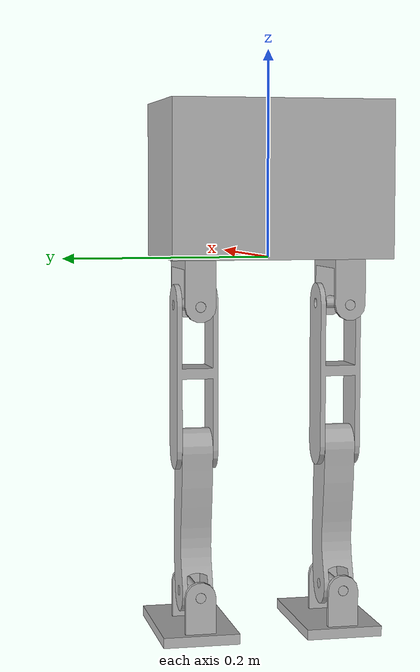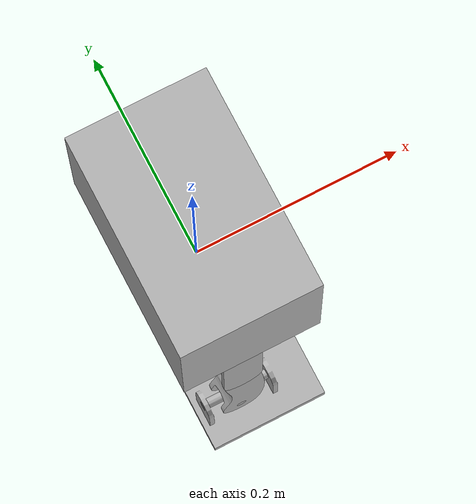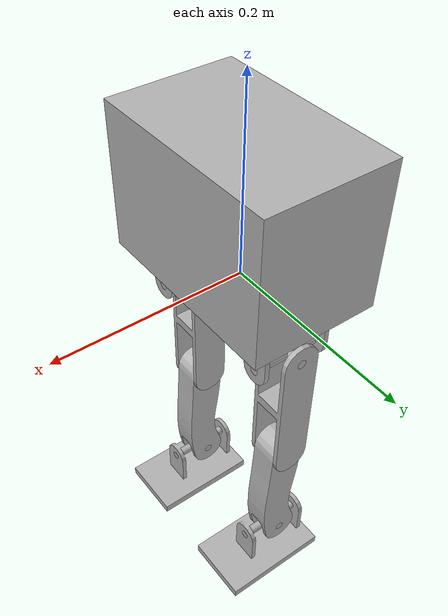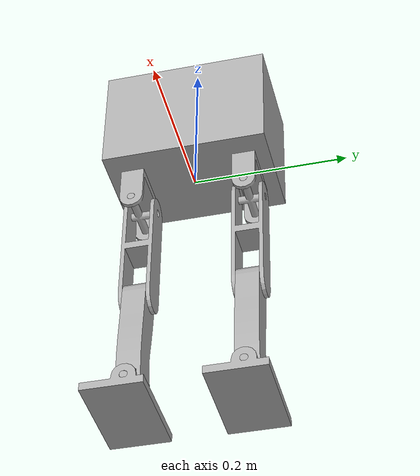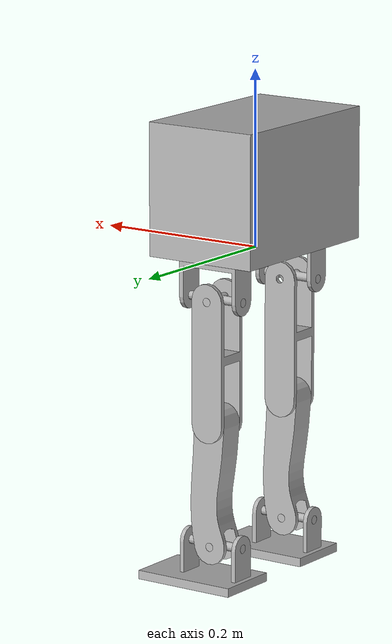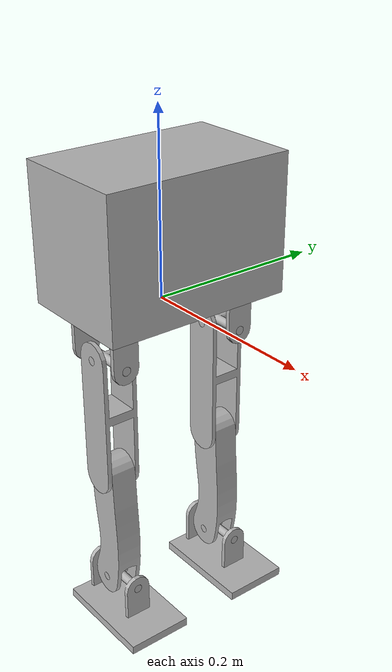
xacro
<?xml version="1.0" ?>
<robot name="LeggedRobot" xmlns:xacro="http://www.ros.org/wiki/xacro">

<xacro:include filename="$(find LeggedRobot_description)/urdf/materials.xacro" />
<xacro:include filename="$(find LeggedRobot_description)/urdf/LeggedRobot.trans" />
<xacro:include filename="$(find LeggedRobot_description)/urdf/LeggedRobot.gazebo" />
<link name="base_link">
  <inertial>
    <origin xyz="-2.7471154310606345e-17 -1.7035252624411454e-17 0.07519859671235585" rpy="0 0 0"/>
    <mass value="7.805254806134041"/>
    <inertia ixx="0.044074" iyy="0.026397" izz="0.041232" ixy="-0.0" iyz="0.0" ixz="-0.0"/>
  </inertial>
  <visual>
    <origin xyz="0 0 0" rpy="0 0 0"/>
    <geometry>
      <mesh filename="../meshes/base_link.stl"/>
    </geometry>
    <material name="silver"/>
  </visual>
  <collision>
    <origin xyz="0 0 0" rpy="0 0 0"/>
    <geometry>
      <mesh filename="../meshes/base_link.stl"/>
    </geometry>
  </collision>
</link>

<link name="Hip_v1__1__1">
  <inertial>
    <origin xyz="0.0022984441069888208 -5.53402129122027e-07 -0.013356564577291863" rpy="0 0 0"/>
    <mass value="0.07120981938348954"/>
    <inertia ixx="2.6e-05" iyy="7e-05" izz="5.4e-05" ixy="0.0" iyz="0.0" ixz="0.0"/>
  </inertial>
  <visual>
    <origin xyz="0.0 -0.073437 -0.0" rpy="0 0 0"/>
    <geometry>
      <mesh filename="../meshes/Hip_v1__1__1.stl"/>
    </geometry>
    <material name="silver"/>
  </visual>
  <collision>
    <origin xyz="0.0 -0.073437 -0.0" rpy="0 0 0"/>
    <geometry>
      <mesh filename="../meshes/Hip_v1__1__1.stl"/>
    </geometry>
  </collision>
</link>

<link name="Hip_v1_1">
  <inertial>
    <origin xyz="0.0022984441069888546 -1.1401027765201022e-06 -0.013356564577292111" rpy="0 0 0"/>
    <mass value="0.07120981938348954"/>
    <inertia ixx="2.6e-05" iyy="7e-05" izz="5.4e-05" ixy="0.0" iyz="0.0" ixz="0.0"/>
  </inertial>
  <visual>
    <origin xyz="0.0 0.073437 -0.0" rpy="0 0 0"/>
    <geometry>
      <mesh filename="../meshes/Hip_v1_1.stl"/>
    </geometry>
    <material name="silver"/>
  </visual>
  <collision>
    <origin xyz="0.0 0.073437 -0.0" rpy="0 0 0"/>
    <geometry>
      <mesh filename="../meshes/Hip_v1_1.stl"/>
    </geometry>
  </collision>
</link>

<link name="Hip_joint_v1_1">
  <inertial>
    <origin xyz="0.036777802683292456 8.700605495792768e-08 -2.3112192325543124e-05" rpy="0 0 0"/>
    <mass value="0.015566398617684687"/>
    <inertia ixx="1e-06" iyy="5e-06" izz="6e-06" ixy="-0.0" iyz="-0.0" ixz="-0.0"/>
  </inertial>
  <visual>
    <origin xyz="0.035 -0.073437 0.045328" rpy="0 0 0"/>
    <geometry>
      <mesh filename="../meshes/Hip_joint_v1_1.stl"/>
    </geometry>
    <material name="silver"/>
  </visual>
  <collision>
    <origin xyz="0.035 -0.073437 0.045328" rpy="0 0 0"/>
    <geometry>
      <mesh filename="../meshes/Hip_joint_v1_1.stl"/>
    </geometry>
  </collision>
</link>

<link name="Ankle_v1_1">
  <inertial>
    <origin xyz="0.03695837800314751 -5.16086539059657e-07 -1.8276981016612792e-05" rpy="0 0 0"/>
    <mass value="0.013454867594222361"/>
    <inertia ixx="0.0" iyy="5e-06" izz="5e-06" ixy="-0.0" iyz="-0.0" ixz="-0.0"/>
  </inertial>
  <visual>
    <origin xyz="0.035 0.073437 0.045328" rpy="0 0 0"/>
    <geometry>
      <mesh filename="../meshes/Ankle_v1_1.stl"/>
    </geometry>
    <material name="silver"/>
  </visual>
  <collision>
    <origin xyz="0.035 0.073437 0.045328" rpy="0 0 0"/>
    <geometry>
      <mesh filename="../meshes/Ankle_v1_1.stl"/>
    </geometry>
  </collision>
</link>

<link name="Upper_leg_v2__1__1">
  <inertial>
    <origin xyz="-6.801099966390877e-17 0.020000293350323717 -0.07192876729347258" rpy="0 0 0"/>
    <mass value="0.1431308285816426"/>
    <inertia ixx="0.000346" iyy="0.000326" izz="5.6e-05" ixy="0.0" iyz="0.0" ixz="0.0"/>
  </inertial>
  <visual>
    <origin xyz="0.0 -0.053437 0.045399" rpy="0 0 0"/>
    <geometry>
      <mesh filename="../meshes/Upper_leg_v2__1__1.stl"/>
    </geometry>
    <material name="silver"/>
  </visual>
  <collision>
    <origin xyz="0.0 -0.053437 0.045399" rpy="0 0 0"/>
    <geometry>
      <mesh filename="../meshes/Upper_leg_v2__1__1.stl"/>
    </geometry>
  </collision>
</link>

<link name="Upper_leg_v2_1">
  <inertial>
    <origin xyz="3.857041070010626e-17 0.019999706649676277 -0.07192876729347247" rpy="0 0 0"/>
    <mass value="0.1431308285816426"/>
    <inertia ixx="0.000346" iyy="0.000326" izz="5.6e-05" ixy="0.0" iyz="0.0" ixz="0.0"/>
  </inertial>
  <visual>
    <origin xyz="-0.0 0.088437 0.045399" rpy="0 0 0"/>
    <geometry>
      <mesh filename="../meshes/Upper_leg_v2_1.stl"/>
    </geometry>
    <material name="silver"/>
  </visual>
  <collision>
    <origin xyz="-0.0 0.088437 0.045399" rpy="0 0 0"/>
    <geometry>
      <mesh filename="../meshes/Upper_leg_v2_1.stl"/>
    </geometry>
  </collision>
</link>

<link name="Lower_leg_v2__1__1">
  <inertial>
    <origin xyz="0.003675908133282728 0.01500029514740242 -0.05875757794300279" rpy="0 0 0"/>
    <mass value="0.301868005898131"/>
    <inertia ixx="0.000629" iyy="0.000642" izz="6.2e-05" ixy="0.0" iyz="0.0" ixz="2.2e-05"/>
  </inertial>
  <visual>
    <origin xyz="0.0 -0.058437 0.185399" rpy="0 0 0"/>
    <geometry>
      <mesh filename="../meshes/Lower_leg_v2__1__1.stl"/>
    </geometry>
    <material name="silver"/>
  </visual>
  <collision>
    <origin xyz="0.0 -0.058437 0.185399" rpy="0 0 0"/>
    <geometry>
      <mesh filename="../meshes/Lower_leg_v2__1__1.stl"/>
    </geometry>
  </collision>
</link>

<link name="Lower_leg_v2_1">
  <inertial>
    <origin xyz="0.0036759081332828213 0.014999708446754995 -0.05875757794300265" rpy="0 0 0"/>
    <mass value="0.301868005898131"/>
    <inertia ixx="0.000629" iyy="0.000642" izz="6.2e-05" ixy="0.0" iyz="0.0" ixz="2.2e-05"/>
  </inertial>
  <visual>
    <origin xyz="-0.0 0.083437 0.185399" rpy="0 0 0"/>
    <geometry>
      <mesh filename="../meshes/Lower_leg_v2_1.stl"/>
    </geometry>
    <material name="silver"/>
  </visual>
  <collision>
    <origin xyz="-0.0 0.083437 0.185399" rpy="0 0 0"/>
    <geometry>
      <mesh filename="../meshes/Lower_leg_v2_1.stl"/>
    </geometry>
  </collision>
</link>

<link name="Ankle_v1__1__1">
  <inertial>
    <origin xyz="0.001958378003147547 0.014999483913460926 5.2723018983069636e-05" rpy="0 0 0"/>
    <mass value="0.013454867594222361"/>
    <inertia ixx="0.0" iyy="5e-06" izz="5e-06" ixy="-0.0" iyz="-0.0" ixz="-0.0"/>
  </inertial>
  <visual>
    <origin xyz="-0.0 0.083437 0.325399" rpy="0 0 0"/>
    <geometry>
      <mesh filename="../meshes/Ankle_v1__1__1.stl"/>
    </geometry>
    <material name="silver"/>
  </visual>
  <collision>
    <origin xyz="-0.0 0.083437 0.325399" rpy="0 0 0"/>
    <geometry>
      <mesh filename="../meshes/Ankle_v1__1__1.stl"/>
    </geometry>
  </collision>
</link>

<link name="Ankle_v1__2__1">
  <inertial>
    <origin xyz="0.001958378003147454 0.015000070614108352 5.2723018982958614e-05" rpy="0 0 0"/>
    <mass value="0.013454867594222361"/>
    <inertia ixx="0.0" iyy="5e-06" izz="5e-06" ixy="-0.0" iyz="-0.0" ixz="-0.0"/>
  </inertial>
  <visual>
    <origin xyz="0.0 -0.058437 0.325399" rpy="0 0 0"/>
    <geometry>
      <mesh filename="../meshes/Ankle_v1__2__1.stl"/>
    </geometry>
    <material name="silver"/>
  </visual>
  <collision>
    <origin xyz="0.0 -0.058437 0.325399" rpy="0 0 0"/>
    <geometry>
      <mesh filename="../meshes/Ankle_v1__2__1.stl"/>
    </geometry>
  </collision>
</link>

<link name="Foot_v1__1__1">
  <inertial>
    <origin xyz="0.05260285295726386 3.9472407584173475e-07 -0.03676333019729189" rpy="0 0 0"/>
    <mass value="0.18191482193416827"/>
    <inertia ixx="9.7e-05" iyy="0.000254" izz="0.000307" ixy="0.0" iyz="-0.0" ixz="1e-05"/>
  </inertial>
  <visual>
    <origin xyz="0.035 -0.073437 0.325328" rpy="0 0 0"/>
    <geometry>
      <mesh filename="../meshes/Foot_v1__1__1.stl"/>
    </geometry>
    <material name="silver"/>
  </visual>
  <collision>
    <origin xyz="0.035 -0.073437 0.325328" rpy="0 0 0"/>
    <geometry>
      <mesh filename="../meshes/Foot_v1__1__1.stl"/>
    </geometry>
  </collision>
</link>

<link name="Foot_v1_1">
  <inertial>
    <origin xyz="0.05260285295726397 -1.919765715702182e-07 -0.036763330197291666" rpy="0 0 0"/>
    <mass value="0.18191482193416827"/>
    <inertia ixx="9.7e-05" iyy="0.000254" izz="0.000307" ixy="0.0" iyz="-0.0" ixz="1e-05"/>
  </inertial>
  <visual>
    <origin xyz="0.035 0.068437 0.325328" rpy="0 0 0"/>
    <geometry>
      <mesh filename="../meshes/Foot_v1_1.stl"/>
    </geometry>
    <material name="silver"/>
  </visual>
  <collision>
    <origin xyz="0.035 0.068437 0.325328" rpy="0 0 0"/>
    <geometry>
      <mesh filename="../meshes/Foot_v1_1.stl"/>
    </geometry>
  </collision>
</link>

<joint name="Revolute 1" type="continuous">
  <origin xyz="0.0 0.073437 0.0" rpy="0 0 0"/>
  <parent link="base_link"/>
  <child link="Hip_v1__1__1"/>
  <axis xyz="-0.0 -0.0 1.0"/>
</joint>

<joint name="Revolute 2" type="continuous">
  <origin xyz="0.0 -0.073437 0.0" rpy="0 0 0"/>
  <parent link="base_link"/>
  <child link="Hip_v1_1"/>
  <axis xyz="0.0 -0.0 -1.0"/>
</joint>

<joint name="Revolute 3" type="continuous">
  <origin xyz="-0.035 0.0 -0.045328" rpy="0 0 0"/>
  <parent link="Hip_v1__1__1"/>
  <child link="Hip_joint_v1_1"/>
  <axis xyz="1.0 0.0 0.0"/>
</joint>

<joint name="Revolute 4" type="continuous">
  <origin xyz="-0.035 0.0 -0.045328" rpy="0 0 0"/>
  <parent link="Hip_v1_1"/>
  <child link="Ankle_v1_1"/>
  <axis xyz="1.0 0.0 0.0"/>
</joint>

<joint name="Revolute 5" type="continuous">
  <origin xyz="0.035 -0.02 -7.1e-05" rpy="0 0 0"/>
  <parent link="Hip_joint_v1_1"/>
  <child link="Upper_leg_v2__1__1"/>
  <axis xyz="-0.0 -1.0 0.0"/>
</joint>

<joint name="Revolute 6" type="continuous">
  <origin xyz="0.035 -0.015 -7.1e-05" rpy="0 0 0"/>
  <parent link="Ankle_v1_1"/>
  <child link="Upper_leg_v2_1"/>
  <axis xyz="0.0 -1.0 0.0"/>
</joint>

<joint name="Revolute 7" type="continuous">
  <origin xyz="0.0 0.005 -0.14" rpy="0 0 0"/>
  <parent link="Upper_leg_v2__1__1"/>
  <child link="Lower_leg_v2__1__1"/>
  <axis xyz="0.0 1.0 0.0"/>
</joint>

<joint name="Revolute 8" type="continuous">
  <origin xyz="0.0 0.005 -0.14" rpy="0 0 0"/>
  <parent link="Upper_leg_v2_1"/>
  <child link="Lower_leg_v2_1"/>
  <axis xyz="0.0 1.0 0.0"/>
</joint>

<joint name="Revolute 9" type="continuous">
  <origin xyz="0.0 0.0 -0.14" rpy="0 0 0"/>
  <parent link="Lower_leg_v2_1"/>
  <child link="Ankle_v1__1__1"/>
  <axis xyz="0.0 -1.0 0.0"/>
</joint>

<joint name="Revolute 10" type="continuous">
  <origin xyz="0.0 0.0 -0.14" rpy="0 0 0"/>
  <parent link="Lower_leg_v2__1__1"/>
  <child link="Ankle_v1__2__1"/>
  <axis xyz="-0.0 -1.0 0.0"/>
</joint>

<joint name="Revolute 11" type="continuous">
  <origin xyz="-0.035 0.015 7.1e-05" rpy="0 0 0"/>
  <parent link="Ankle_v1__2__1"/>
  <child link="Foot_v1__1__1"/>
  <axis xyz="-1.0 0.0 -0.0"/>
</joint>

<joint name="Revolute 12" type="continuous">
  <origin xyz="-0.035 0.015 7.1e-05" rpy="0 0 0"/>
  <parent link="Ankle_v1__1__1"/>
  <child link="Foot_v1_1"/>
  <axis xyz="-1.0 0.0 -0.0"/>
</joint>

</robot>

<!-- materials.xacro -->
<robot name="LeggedRobot" xmlns:xacro="http://www.ros.org/wiki/xacro" >

<material name="silver">
  <color rgba="0.700 0.700 0.700 1.000"/>
</material>

</robot>

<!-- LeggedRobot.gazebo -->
<robot name="LeggedRobot" xmlns:xacro="http://www.ros.org/wiki/xacro" >

<xacro:property name="body_color" value="Gazebo/Silver" />

<gazebo>
  <plugin name="control" filename="libgazebo_ros_control.so"/>
</gazebo>
<gazebo reference="base_link">
  <material>${body_color}</material>
  <mu1>0.2</mu1>
  <mu2>0.2</mu2>
  <selfCollide>true</selfCollide>
  <gravity>true</gravity>
</gazebo>

<gazebo reference="Hip_v1__1__1">
  <material>${body_color}</material>
  <mu1>0.2</mu1>
  <mu2>0.2</mu2>
  <selfCollide>true</selfCollide>
</gazebo>

<gazebo reference="Hip_v1_1">
  <material>${body_color}</material>
  <mu1>0.2</mu1>
  <mu2>0.2</mu2>
  <selfCollide>true</selfCollide>
</gazebo>

<gazebo reference="Hip_joint_v1_1">
  <material>${body_color}</material>
  <mu1>0.2</mu1>
  <mu2>0.2</mu2>
  <selfCollide>true</selfCollide>
</gazebo>

<gazebo reference="Ankle_v1_1">
  <material>${body_color}</material>
  <mu1>0.2</mu1>
  <mu2>0.2</mu2>
  <selfCollide>true</selfCollide>
</gazebo>

<gazebo reference="Upper_leg_v2__1__1">
  <material>${body_color}</material>
  <mu1>0.2</mu1>
  <mu2>0.2</mu2>
  <selfCollide>true</selfCollide>
</gazebo>

<gazebo reference="Upper_leg_v2_1">
  <material>${body_color}</material>
  <mu1>0.2</mu1>
  <mu2>0.2</mu2>
  <selfCollide>true</selfCollide>
</gazebo>

<gazebo reference="Lower_leg_v2__1__1">
  <material>${body_color}</material>
  <mu1>0.2</mu1>
  <mu2>0.2</mu2>
  <selfCollide>true</selfCollide>
</gazebo>

<gazebo reference="Lower_leg_v2_1">
  <material>${body_color}</material>
  <mu1>0.2</mu1>
  <mu2>0.2</mu2>
  <selfCollide>true</selfCollide>
</gazebo>

<gazebo reference="Ankle_v1__1__1">
  <material>${body_color}</material>
  <mu1>0.2</mu1>
  <mu2>0.2</mu2>
  <selfCollide>true</selfCollide>
</gazebo>

<gazebo reference="Ankle_v1__2__1">
  <material>${body_color}</material>
  <mu1>0.2</mu1>
  <mu2>0.2</mu2>
  <selfCollide>true</selfCollide>
</gazebo>

<gazebo reference="Foot_v1__1__1">
  <material>${body_color}</material>
  <mu1>0.2</mu1>
  <mu2>0.2</mu2>
  <selfCollide>true</selfCollide>
</gazebo>

<gazebo reference="Foot_v1_1">
  <material>${body_color}</material>
  <mu1>0.2</mu1>
  <mu2>0.2</mu2>
  <selfCollide>true</selfCollide>
</gazebo>

</robot>
